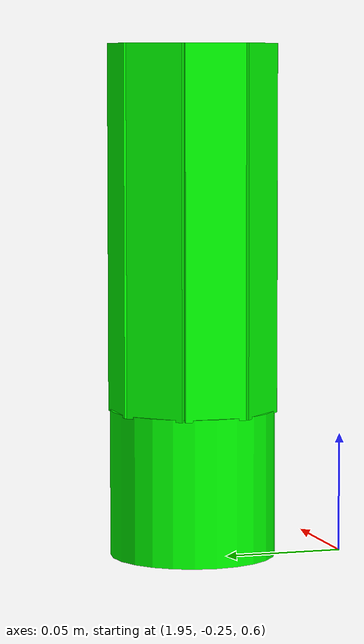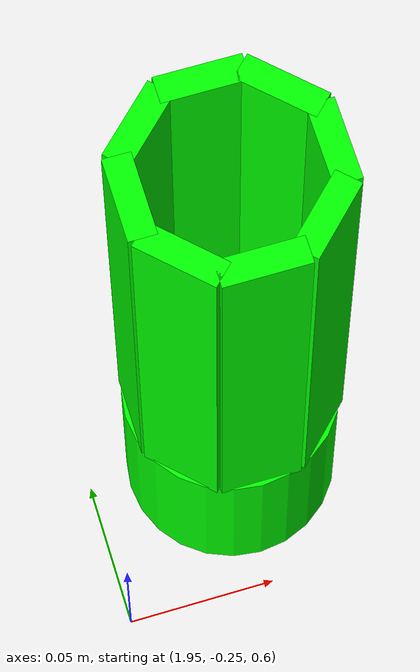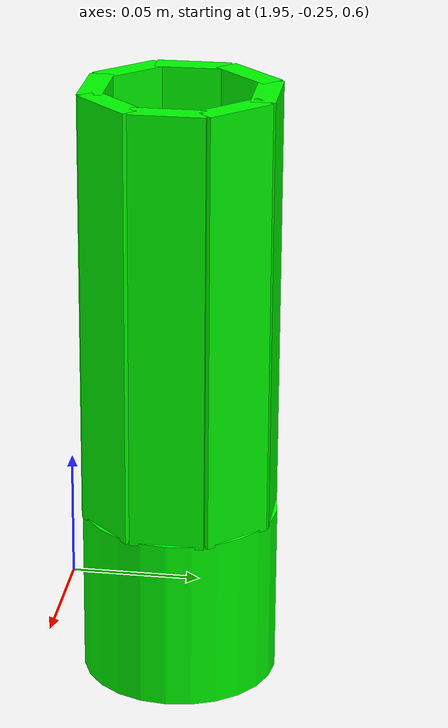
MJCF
<mujoco>
	<compiler angle="radian" autolimits="true" />
	<option timestep="0.001" integrator="RK4" solver="CG" gravity="0 0 -9.81">
		<flag contact="enable" multiccd="enable"/>
	</option>

	<default>
        <geom condim="4" solimp="0.99 0.99 0" solref="0.01 1" friction="1 0.006 0.0001"/>
    </default>

    <asset>
    	<texture type="skybox" builtin="gradient" rgb1="1 1 1" rgb2=".6 .8 1" width="256" height="256"/>
		<texture name="grid" type="2d" builtin="checker" width="112" height="112" rgb1="0 0 0" rgb2="1 1 1" />
		<material name="grid" texture="grid" texrepeat="1 1" texuniform="true" reflectance=".2" />
	</asset>

	<worldbody>
		<geom name="floor" size="0 0 .05" type="plane" material="grid" condim="3" />
		<light diffuse="1 1 1" pos="0 0 5" dir="0 0 -1" />
		<light diffuse="1 1 1" pos="2 -1 5" dir="0 0 -1" />
		<light diffuse="1 1 1" pos="1 1 5" dir="0 0 -1" />
	</worldbody>
	<worldbody>
		<body name="free_cup" pos="2 -0.2 0.7">
			<freejoint name="dest_cup_joint"/>
     		<inertial pos="0.0 0.0 0.0" mass="0.01" diaginertia="0.0008 0.0008 0.00015" />
			<geom name="bottom_cylinder" type="cylinder" pos="0 0 -0.076" size="0.036 0.032" rgba="0 1 0 1"/>
			<geom type="box" pos="0 0 -0.072" size="0.04 0.04 0.04" rgba="1 1 0 1" group="3" />
			<geom type="box" pos="0.03 0 0.035" euler="0 0 0" size="0.0044 0.013420519420888278 0.08" rgba="0 1 0 1" />
			<geom type="box" pos="0.021213 0.021213 0.035" euler="0 0 0.7853981633974483" size="0.0044 0.013420519420888278 0.08" rgba="0 1 0 1" />
			<geom type="box" pos="0 0.03 0.035" euler="0 0 1.5707963267948966" size="0.0044 0.013420519420888278 0.08" rgba="0 1 0 1" />
			<geom type="box" pos="-0.021213 0.021213 0.035" euler="0 0 2.356194490192345" size="0.0044 0.013420519420888278 0.08" rgba="0 1 0 1" />
			<geom type="box" pos="-0.03 0 0.035" euler="0 0 3.141592653589793" size="0.0044 0.013420519420888278 0.08" rgba="0 1 0 1" />
			<geom type="box" pos="-0.021213 -0.021213 0.035" euler="0 0 -2.356194490192345" size="0.0044 0.013420519420888278 0.08" rgba="0 1 0 1" />
			<geom type="box" pos="0 -0.03 0.035" euler="0 0 -1.5707963267948966" size="0.0044 0.013420519420888278 0.08" rgba="0 1 0 1" />
			<geom type="box" pos="0.021213 -0.021213 0.035" euler="0 0 -0.7853981633974483" size="0.0044 0.013420519420888278 0.08" rgba="0 1 0 1" />
		</body>
	</worldbody>

</mujoco>
